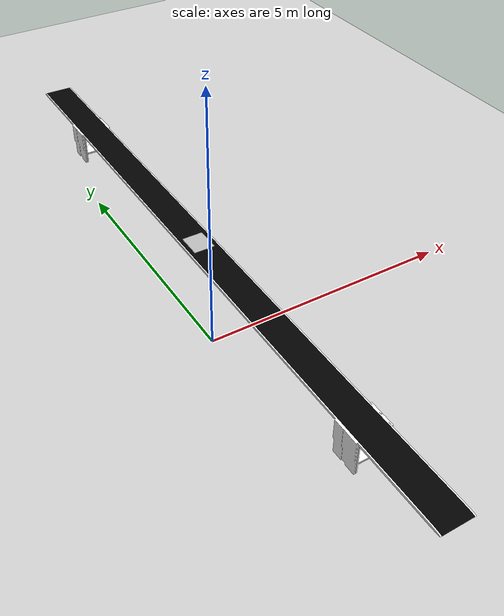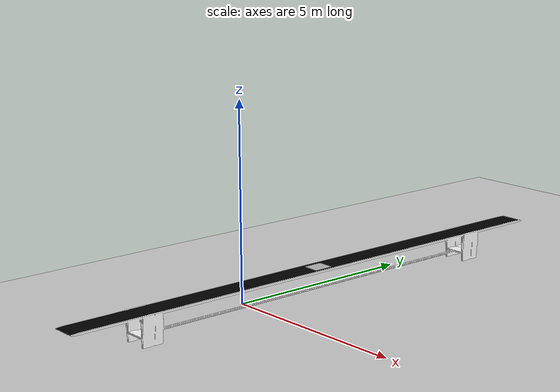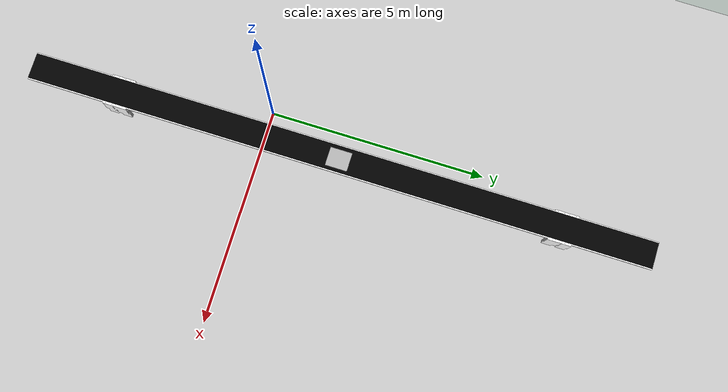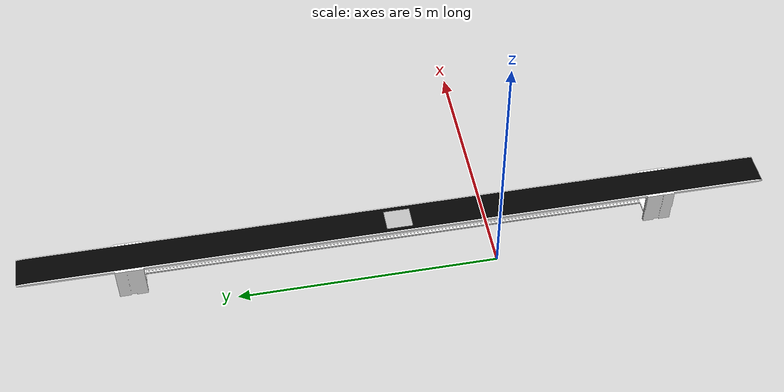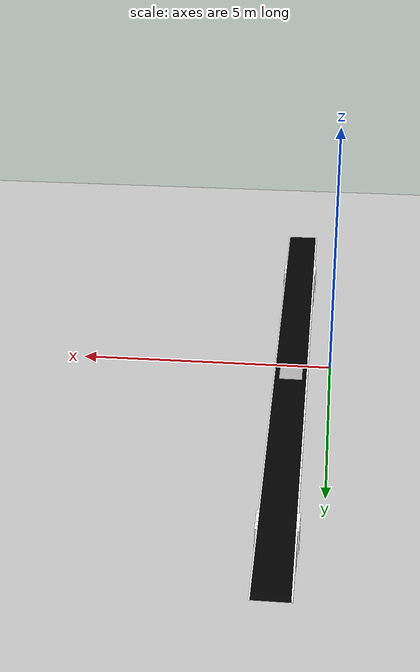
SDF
<sdf version='1.7'>
  <world name='default'>

    <!-- Lighting -->
    <light name='sun' type='directional'>
      <cast_shadows>1</cast_shadows>
      <pose>0 0 10 0 -0 0</pose>
      <diffuse>0.8 0.8 0.8 1</diffuse>
      <specular>0.2 0.2 0.2 1</specular>
      <attenuation>
        <range>1000</range>
        <constant>0.9</constant>
        <linear>0.01</linear>
        <quadratic>0.001</quadratic>
      </attenuation>
      <direction>-0.5 0.1 -0.9</direction>
    </light>

    <!-- Ground plane -->
    <model name='ground_plane'>
      <static>1</static>
      <link name='link'>
        <collision name='collision'>
          <geometry>
            <plane>
              <normal>0 0 1</normal>
              <size>100 100</size>
            </plane>
          </geometry>
          <surface>
            <friction>
              <ode>
                <mu>100</mu>
                <mu2>50</mu2>
              </ode>
            </friction>
          </surface>
        </collision>
        <visual name='visual'>
          <geometry>
            <plane>
              <normal>0 0 1</normal>
              <size>100 100</size>
            </plane>
          </geometry>
          <material>
            <script>
              <uri>file://media/materials/scripts/gazebo.material</uri>
              <name>Gazebo/Grey</name>
            </script>
          </material>
        </visual>
      </link>
    </model>

    <gravity>0 0 -9.8</gravity>
    <physics type='ode'>
      <max_step_size>0.001</max_step_size>
      <real_time_update_rate>1000</real_time_update_rate>
    </physics>

    <!-- ============ CONVEYOR BELT ============ -->
    <model name='conveyor'>
      <link name='belt_visual'>
        <visual name='visual'>
          <geometry>
            <mesh>
              <scale>1.5 12 1</scale>
              <uri>model://conveyor_belt/meshes/conveyor_belt.dae</uri>
            </mesh>
          </geometry>
        </visual>
      </link>

      <link name='belt_moving'>
        <pose>0 0 0.741 0 0 0</pose>
        <collision name='belt_collision'>
          <geometry>
            <box>
              <size>0.425 12 1e-05</size>
            </box>
          </geometry>
        </collision>
        <visual name='belt_visual'>
          <geometry>
            <box>
              <size>0.425 0.5 0.001</size>
            </box>
          </geometry>
        </visual>
      </link>

      <joint name='belt_joint' type='prismatic'>
        <parent>belt_visual</parent>
        <child>belt_moving</child>
        <axis>
          <xyz expressed_in='__model__'>0 1 0</xyz>
          <limit>
            <lower>0</lower>
            <upper>0.01</upper>
          </limit>
        </axis>
      </joint>

      <plugin name='ros2_conveyorbelt_plugin' filename='libros2_conveyorbelt_plugin.so'>
        <ros>
          <namespace/>
        </ros>
        <max_velocity>1.0</max_velocity>
        <publish_rate>1000</publish_rate>
      </plugin>

      <pose>0.731738 1.79961 0 0 0 0</pose>
    </model>

    <!-- GUI Camera -->
    <gui fullscreen='0'>
      <camera name='user_camera'>
        <pose>3.94 -7.00 4.27 0 0.59 2.12</pose>
        <view_controller>orbit</view_controller>
        <projection_type>perspective</projection_type>
      </camera>
    </gui>

  </world>
</sdf>
